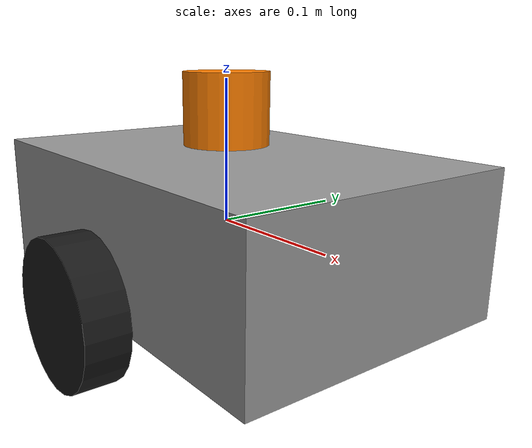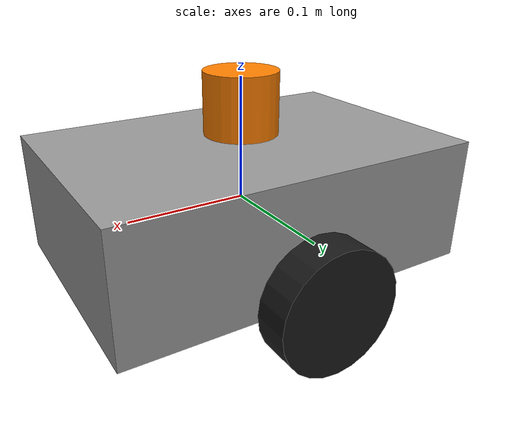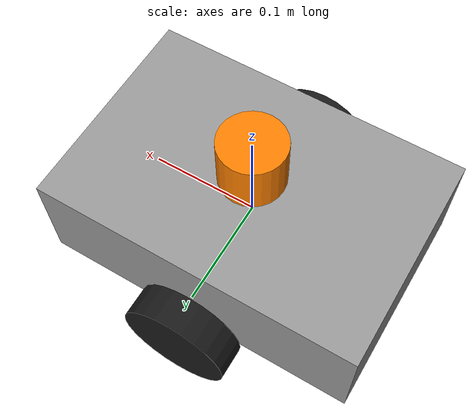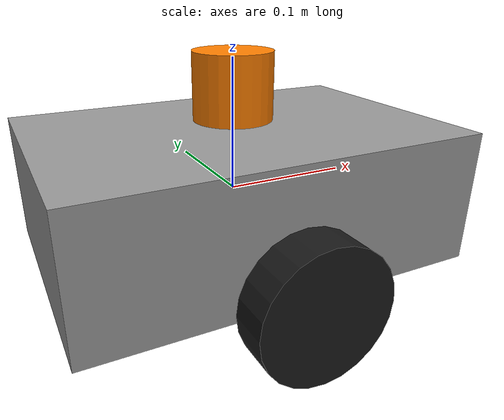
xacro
<?xml version="1.0"?>
<robot name="lidar_robot" xmlns:xacro="http://www.ros.org/wiki/xacro">

  <!-- ===================== PROPERTIES ===================== -->
  <xacro:property name="base_length" value="0.30"/>
  <xacro:property name="base_width" value="0.20"/>
  <xacro:property name="base_height" value="0.10"/>
  <xacro:property name="wheel_radius" value="0.05"/>
  <xacro:property name="wheel_width" value="0.03"/>
  <xacro:property name="wheel_separation" value="0.24"/>
  <xacro:property name="caster_radius" value="0.03"/>

  <!-- ===================== MATERIALS ===================== -->
  <material name="grey"><color rgba="0.6 0.6 0.6 1"/></material>
  <material name="black"><color rgba="0.1 0.1 0.1 1"/></material>
  <material name="orange"><color rgba="1.0 0.5 0.0 1"/></material>

  <!-- ===================== BASE LINK ===================== -->
  <link name="base_link">
    <visual>
      <geometry><box size="${base_length} ${base_width} ${base_height}"/></geometry>
      <material name="grey"/>
    </visual>
    <collision>
      <geometry><box size="${base_length} ${base_width} ${base_height}"/></geometry>
    </collision>
    <inertial>
      <mass value="2.0"/>
      <inertia ixx="0.01" ixy="0" ixz="0" iyy="0.02" iyz="0" izz="0.02"/>
    </inertial>
  </link>

  <!-- ===================== WHEEL MACRO ===================== -->
  <xacro:macro name="wheel" params="prefix reflect">
    <link name="${prefix}_wheel_link">
      <visual>
        <origin rpy="1.5708 0 0"/>
        <geometry><cylinder radius="${wheel_radius}" length="${wheel_width}"/></geometry>
        <material name="black"/>
      </visual>
      <collision>
        <origin rpy="1.5708 0 0"/>
        <geometry><cylinder radius="${wheel_radius}" length="${wheel_width}"/></geometry>
      </collision>
      <inertial>
        <mass value="0.2"/>
        <inertia ixx="0.0005" ixy="0" ixz="0" iyy="0.0005" iyz="0" izz="0.0005"/>
      </inertial>
    </link>

    <joint name="${prefix}_wheel_joint" type="continuous">
      <parent link="base_link"/>
      <child link="${prefix}_wheel_link"/>
      <origin xyz="0 ${reflect * wheel_separation/2} ${-base_height/2 + 0.01}" rpy="0 0 0"/>
      <axis xyz="0 1 0"/>
    </joint>
  </xacro:macro>

  <xacro:wheel prefix="left" reflect="1"/>
  <xacro:wheel prefix="right" reflect="-1"/>

  <!-- ===================== CASTER WHEEL ===================== -->
  <link name="caster_wheel_link">
    <visual>
      <geometry><sphere radius="${caster_radius}"/></geometry>
      <material name="black"/>
    </visual>
    <collision>
      <geometry><sphere radius="${caster_radius}"/></geometry>
    </collision>
    <inertial>
      <mass value="0.05"/>
      <inertia ixx="0.0001" ixy="0" ixz="0" iyy="0.0001" iyz="0" izz="0.0001"/>
    </inertial>
  </link>

  <joint name="caster_wheel_joint" type="fixed">
    <parent link="base_link"/>
    <child link="caster_wheel_link"/>
    <origin xyz="${base_length/2 - 0.05} 0 ${-base_height/2}" rpy="0 0 0"/>
  </joint>

  <!-- ===================== LIDAR LINK ===================== -->
  <link name="lidar_link">
    <visual>
      <geometry><cylinder radius="0.03" length="0.05"/></geometry>
      <material name="orange"/>
    </visual>
    <collision>
      <geometry><cylinder radius="0.03" length="0.05"/></geometry>
    </collision>
    <inertial>
      <mass value="0.1"/>
      <inertia ixx="0.0001" ixy="0" ixz="0" iyy="0.0001" iyz="0" izz="0.0001"/>
    </inertial>
  </link>

  <joint name="lidar_joint" type="fixed">
    <parent link="base_link"/>
    <child link="lidar_link"/>
    <origin xyz="0 0 ${base_height/2 + 0.03}" rpy="0 0 0"/>
  </joint>

  <!-- ===================== GAZEBO PLUGINS (gz-sim / Harmonic) ===================== -->
  <gazebo>
    <plugin filename="gz-sim-diff-drive-system" name="gz::sim::systems::DiffDrive">
      <left_joint>left_wheel_joint</left_joint>
      <right_joint>right_wheel_joint</right_joint>
      <wheel_separation>${wheel_separation}</wheel_separation>
      <wheel_radius>${wheel_radius}</wheel_radius>
      <odom_publish_frequency>30</odom_publish_frequency>
      <topic>cmd_vel</topic>
      <odom_topic>odom</odom_topic>
      <tf_topic>tf</tf_topic>
      <frame_id>odom</frame_id>
      <child_frame_id>base_link</child_frame_id>
    </plugin>

    <plugin filename="gz-sim-joint-state-publisher-system" name="gz::sim::systems::JointStatePublisher">
      <topic>joint_states</topic>
      <joint_name>left_wheel_joint</joint_name>
      <joint_name>right_wheel_joint</joint_name>
    </plugin>
  </gazebo>

  <!-- ===================== LIDAR SENSOR ===================== -->
  <gazebo reference="lidar_link">
    <sensor name="lidar_sensor" type="gpu_lidar">
      <pose>0 0 0 0 0 0</pose>
      <topic>scan</topic>
      <gz_frame_id>lidar_link</gz_frame_id>
      <update_rate>10</update_rate>
      <always_on>true</always_on>
      <visualize>true</visualize>
      <lidar>
        <scan>
          <horizontal>
            <samples>360</samples>
            <resolution>1</resolution>
            <min_angle>-3.14159</min_angle>
            <max_angle>3.14159</max_angle>
          </horizontal>
        </scan>
        <range>
          <min>0.12</min>
          <max>10.0</max>
          <resolution>0.01</resolution>
        </range>
      </lidar>
    </sensor>
  </gazebo>

</robot>
